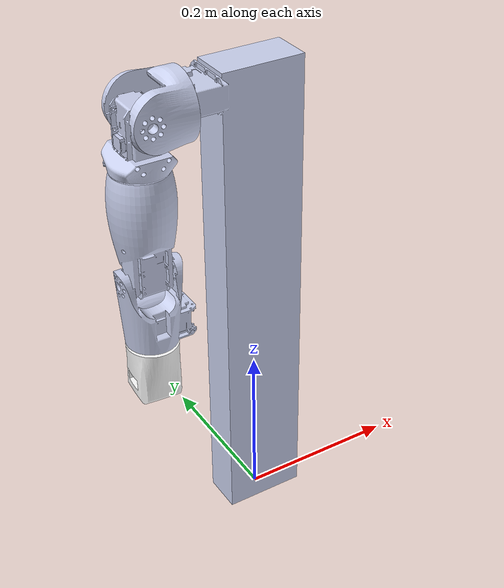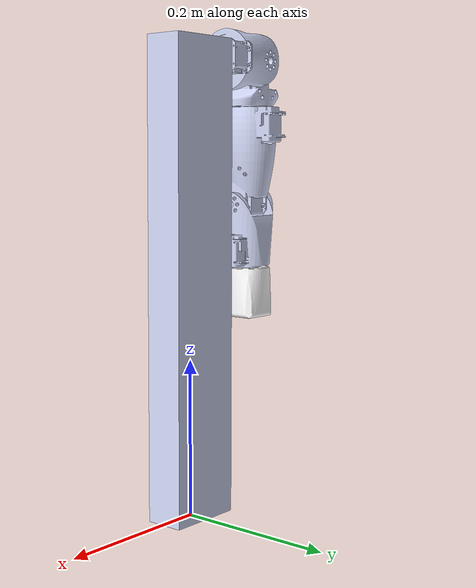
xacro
<?xml version="1.0"?>
<robot xmlns:xacro="http://www.ros.org/wiki/xacro" name="hdt_arm">

  <!-- ============================================================
       Arguments (ส่งมาจาก launch file)
       ============================================================ -->
  <xacro:arg name="use_sim"              default="false"/>
  <xacro:arg name="use_mock_hardware"    default="false"/>
  <xacro:arg name="mock_sensor_commands" default="false"/>
  <xacro:arg name="port_name"            default="/dev/ttyUSB0"/>
  <xacro:arg name="prefix"               default=""/>
  <xacro:arg name="initial_positions_file"
             default="$(find hdt_arm_description)/config/initial_positions.yaml"/>
  <xacro:arg name="ros_namespace"        default="real"/>

  <!-- Import URDF หลัก (geometry + joints) -->
  <xacro:include filename="$(find hdt_arm_description)/urdf/hdt_arm.urdf"/>

  <!-- Import ros2_control plugin (สลับ sim/real ตาม use_sim) -->
  <xacro:include filename="$(find hdt_arm_description)/urdf/hdt_arm.ros2_control.xacro"/>

  <!-- เรียกใช้ macro พร้อมส่ง arguments -->
  <xacro:hdt_arm_ros2_control
    name="hdt_arm"
    use_sim="$(arg use_sim)"
    use_mock_hardware="$(arg use_mock_hardware)"
    mock_sensor_commands="$(arg mock_sensor_commands)"
    port_name="$(arg port_name)"
    initial_positions_file="$(arg initial_positions_file)"
    ros_namespace="$(arg ros_namespace)"/>

</robot>

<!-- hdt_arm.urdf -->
<robot
    name="hdt_arm">

  <link name="world"/>

  <joint name="world_to_base" type="fixed">
    <parent link="world"/>
    <child link="base_link"/>
  </joint>

  <link
    name="base_link">
    <inertial>
      <origin
        xyz="-0.00185265442989896 0.000124881747033144 0.307106424185721"
        rpy="0 0 0" />
      <mass
        value="3.08474382724207" />
      <inertia
        ixx="0.0906570966744558"
        ixy="3.69583657226193E-07"
        ixz="2.15121154278286E-09"
        iyy="0.092521893742773"
        iyz="1.74300866658949E-09"
        izz="0.0031647521867604" />
    </inertial>
    <visual>
      <origin
        xyz="0 0 0"
        rpy="0 0 0" />
      <geometry>
        <mesh
          filename="package://hdt_arm_description/meshes/base_link.STL" />
      </geometry>
      <material
        name="">
        <color
          rgba="0.792156862745098 0.819607843137255 0.933333333333333 1" />
      </material>
    </visual>
    <collision>
      <origin
        xyz="0 0 0"
        rpy="0 0 0" />
      <geometry>
        <mesh
          filename="package://hdt_arm_description/meshes/base_link.STL" />
      </geometry>
    </collision>
  </link>
  <link
    name="shoulder_link">
    <inertial>
      <origin
        xyz="-8.64470843933707E-06 4.94185966593008E-08 0.0228817013811624"
        rpy="0 0 0" />
      <mass
        value="0.131804544036158" />
      <inertia
        ixx="9.76911612624426E-05"
        ixy="-5.9935573864212E-10"
        ixz="3.73214819741335E-08"
        iyy="0.000128869663534819"
        iyz="1.00323807987968E-10"
        izz="0.000140540831089039" />
    </inertial>
    <visual>
      <origin
        xyz="0 0 0"
        rpy="0 0 0" />
      <geometry>
        <mesh
          filename="package://hdt_arm_description/meshes/shoulder_link.STL" />
      </geometry>
      <material
        name="">
        <color
          rgba="0.792156862745098 0.819607843137255 0.933333333333333 1" />
      </material>
    </visual>
    <collision>
      <origin
        xyz="0 0 0"
        rpy="0 0 0" />
      <geometry>
        <mesh
          filename="package://hdt_arm_description/meshes/shoulder_link.STL" />
      </geometry>
    </collision>
  </link>
  <joint
    name="shoulder_pitch_joint"
    type="revolute">
    <origin
      xyz="-0.097339 -0.025213 0.5798"
      rpy="1.5708 0.0027023 -1.5708" />
    <parent
      link="base_link" />
    <child
      link="shoulder_link" />
    <axis
      xyz="0 0 1" />
    <limit
      lower="-1.57"
      upper="3.142"
      effort="30"
      velocity="2.5" />
    <dynamics
      damping="3"
      friction="0.3" />
  </joint>
  <link
    name="upperarm1_link">
    <inertial>
      <origin
        xyz="-0.0270974794382298 -0.000335518010162284 -0.000215085285874606"
        rpy="0 0 0" />
      <mass
        value="0.126584658015041" />
      <inertia
        ixx="5.37889563161172E-05"
        ixy="3.69874660150051E-07"
        ixz="2.06968413231269E-07"
        iyy="4.85237849080729E-05"
        iyz="5.57113526327867E-09"
        izz="5.80191581216142E-05" />
    </inertial>
    <visual>
      <origin
        xyz="0 0 0"
        rpy="0 0 0" />
      <geometry>
        <mesh
          filename="package://hdt_arm_description/meshes/upperarm1_link.STL" />
      </geometry>
      <material
        name="">
        <color
          rgba="0.792156862745098 0.819607843137255 0.933333333333333 1" />
      </material>
    </visual>
    <collision>
      <origin
        xyz="0 0 0"
        rpy="0 0 0" />
      <geometry>
        <mesh
          filename="package://hdt_arm_description/meshes/upperarm1_link.STL" />
      </geometry>
    </collision>
  </link>
  <joint
    name="shoulder_roll_joint"
    type="revolute">
    <origin
      xyz="0 0 0.05"
      rpy="0 0.0050003493751645 1.57079632679483" />
    <parent
      link="shoulder_link" />
    <child
      link="upperarm1_link" />
    <axis
      xyz="0 1 0" />
    <limit
      lower="-0.1"
      upper="2.967"
      effort="35"
      velocity="2.5" />
    <dynamics
      damping="3.5"
      friction="0.35" />
  </joint>
  <link
    name="upperarm2_link">
    <inertial>
      <origin
        xyz="0.000642273523111969 -0.00186847295716311 0.0596995610605822"
        rpy="0 0 0" />
      <mass
        value="0.366089716558351" />
      <inertia
        ixx="0.000290203472897758"
        ixy="1.15521440059697E-06"
        ixz="2.1949071021368E-07"
        iyy="0.000291669697328334"
        iyz="3.45228644880983E-05"
        izz="0.000213729682110031" />
    </inertial>
    <visual>
      <origin
        xyz="0 0 0"
        rpy="0 0 0" />
      <geometry>
        <mesh
          filename="package://hdt_arm_description/meshes/upperarm2_link.STL" />
      </geometry>
      <material
        name="">
        <color
          rgba="0.792156862745098 0.819607843137255 0.933333333333333 1" />
      </material>
    </visual>
    <collision>
      <origin
        xyz="0 0 0"
        rpy="0 0 0" />
      <geometry>
        <mesh
          filename="package://hdt_arm_description/meshes/upperarm2_link.STL" />
      </geometry>
    </collision>
  </link>
  <joint
    name="upperarm_joint"
    type="revolute">
    <origin
      xyz="-0.058125 -0.0007019 1.8051E-05"
      rpy="1.5708 1.5699 -1.5708" />
    <parent
      link="upperarm1_link" />
    <child
      link="upperarm2_link" />
    <axis
      xyz="0 0 1" />
    <limit
      lower="-1.57"
      upper="1.57"
      effort="20"
      velocity="3" />
    <dynamics
      damping="1.5"
      friction="0.2" />
  </joint>
  <link
    name="forearm1_link">
    <inertial>
      <origin
        xyz="0.00446939183598116 -0.00186709418557896 0.050046419135702"
        rpy="0 0 0" />
      <mass
        value="0.190624207792798" />
      <inertia
        ixx="0.00010792265733471"
        ixy="1.66343343520877E-06"
        ixz="1.04671109179094E-05"
        iyy="0.000135014500587215"
        iyz="-4.26246418274752E-06"
        izz="0.000103429228625086" />
    </inertial>
    <visual>
      <origin
        xyz="0 0 0"
        rpy="0 0 0" />
      <geometry>
        <mesh
          filename="package://hdt_arm_description/meshes/forearm1_link.STL" />
      </geometry>
      <material
        name="">
        <color
          rgba="0.792156862745098 0.819607843137255 0.933333333333333 1" />
      </material>
    </visual>
    <collision>
      <origin
        xyz="0 0 0"
        rpy="0 0 0" />
      <geometry>
        <mesh
          filename="package://hdt_arm_description/meshes/forearm1_link.STL" />
      </geometry>
    </collision>
  </link>
  <joint
    name="elbow_joint"
    type="revolute">
    <origin
      xyz="0 0.00179999999999941 0.130288231760884"
      rpy="0.0108598638667313 0 0" />
    <parent
      link="upperarm2_link" />
    <child
      link="forearm1_link" />
    <axis
      xyz="1 0 0" />
    <limit
      lower="-1.9"
      upper="0"
      effort="30"
      velocity="2.5" />
    <dynamics
      damping="2.5"
      friction="0.25" />
  </joint>
  <link
    name="forearm2_link">
    <inertial>
      <origin
        xyz="-3.83187311991939E-07 -0.000790994594038724 0.0329193741039864"
        rpy="0 0 0" />
      <mass
        value="0.111412113216521" />
      <inertia
        ixx="7.13738774456359E-05"
        ixy="-3.80430175827502E-12"
        ixz="-1.14269217650218E-09"
        iyy="7.30944697068781E-05"
        iyz="1.1651157781337E-06"
        izz="6.25052820262287E-05" />
    </inertial>
    <visual>
      <origin
        xyz="0 0 0"
        rpy="0 0 0" />
      <geometry>
        <mesh
          filename="package://hdt_arm_description/meshes/forearm2_link.STL" />
      </geometry>
      <material
        name="">
        <color
          rgba="1 1 1 1" />
      </material>
    </visual>
    <collision>
      <origin
        xyz="0 0 0"
        rpy="0 0 0" />
      <geometry>
        <mesh
          filename="package://hdt_arm_description/meshes/forearm2_link.STL" />
      </geometry>
    </collision>
  </link>
  <joint
    name="wrist_joint"
    type="revolute">
    <origin
      xyz="0.00151379184988912 0.000199999999999732 0.0852338392812358"
      rpy="0 0 1.63811711390951" />
    <parent
      link="forearm1_link" />
    <child
      link="forearm2_link" />
    <axis
      xyz="0 0 1" />
    <limit
      lower="-1.57"
      upper="1.57"
      effort="12"
      velocity="3.5" />
    <dynamics
      damping="1"
      friction="0.1" />
  </joint>
</robot>
